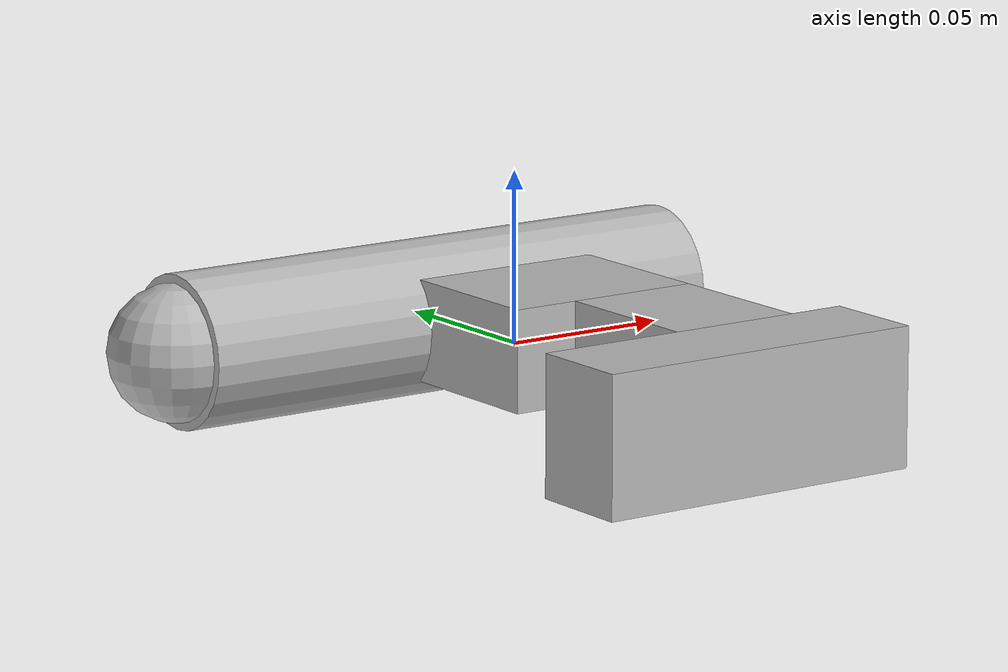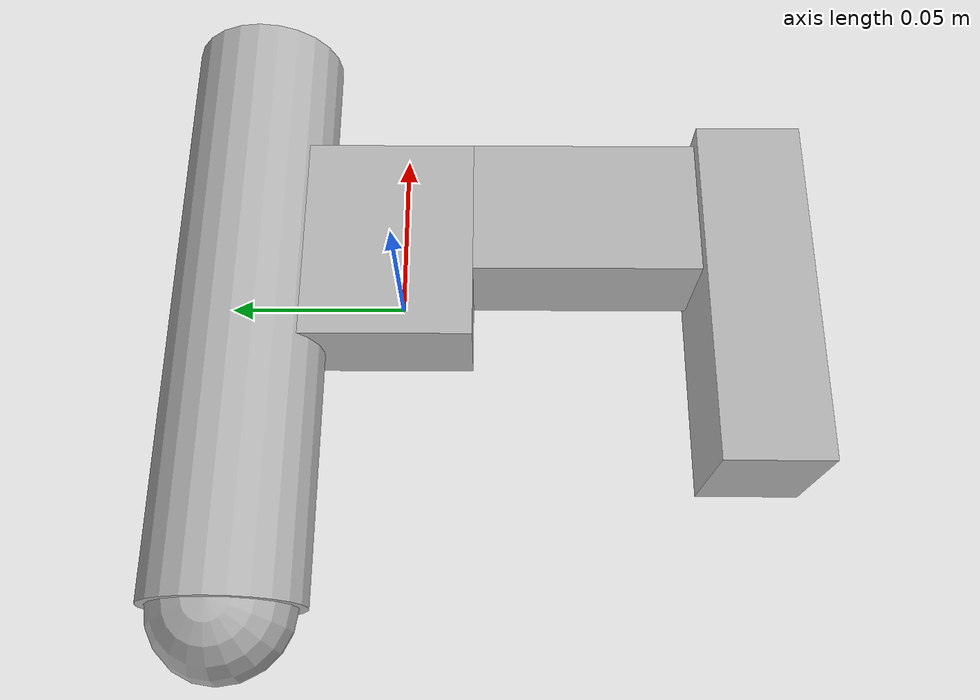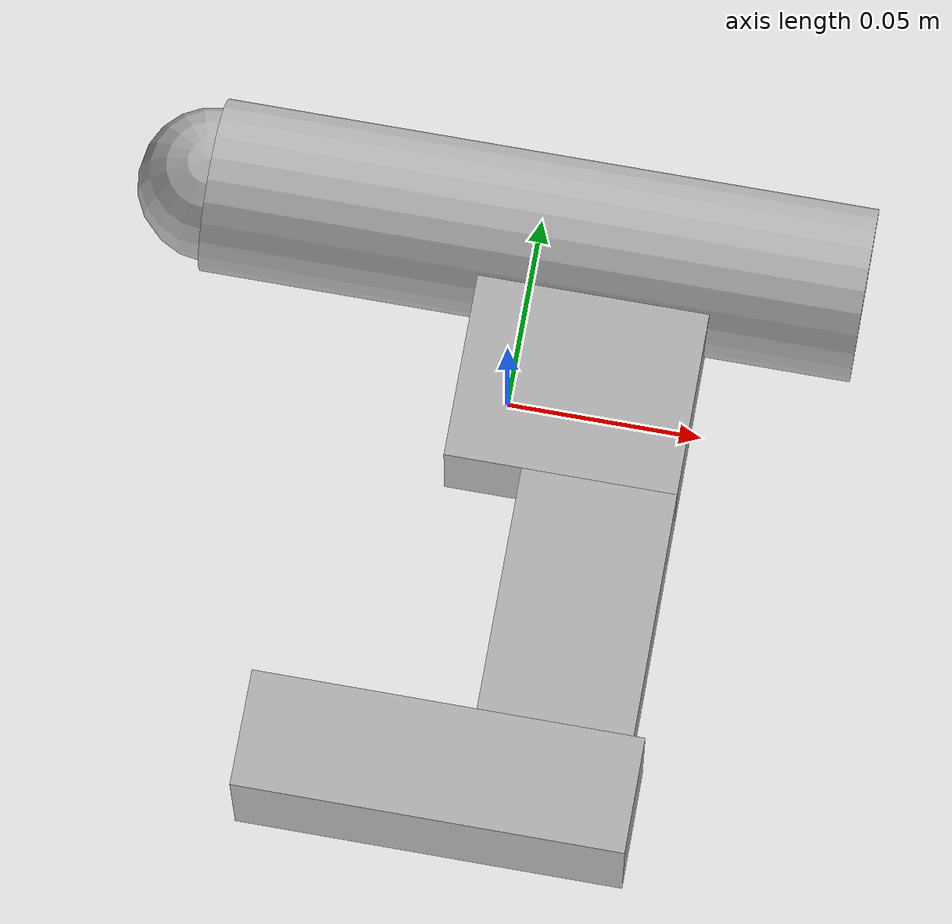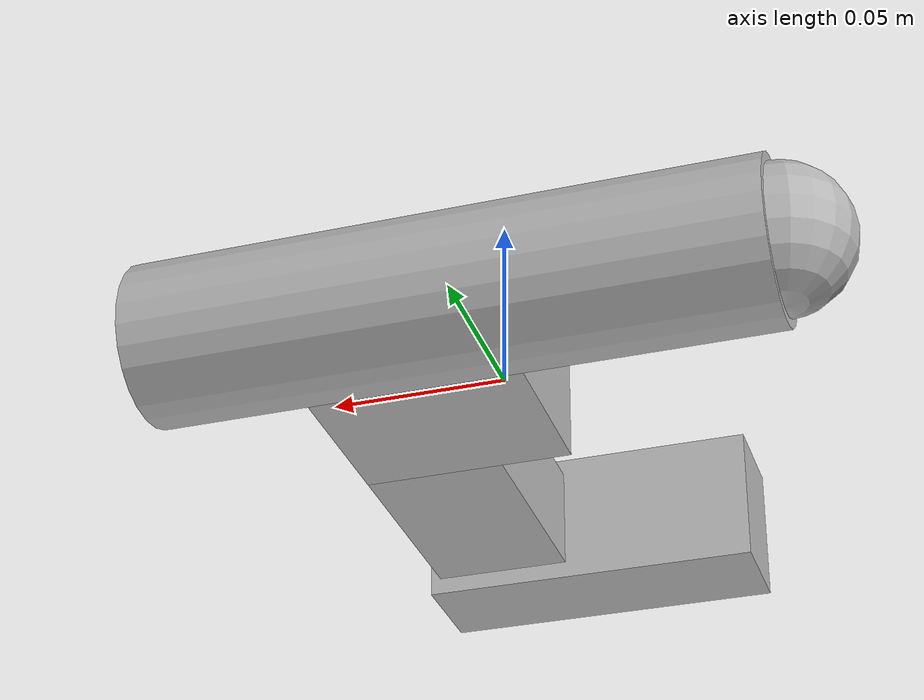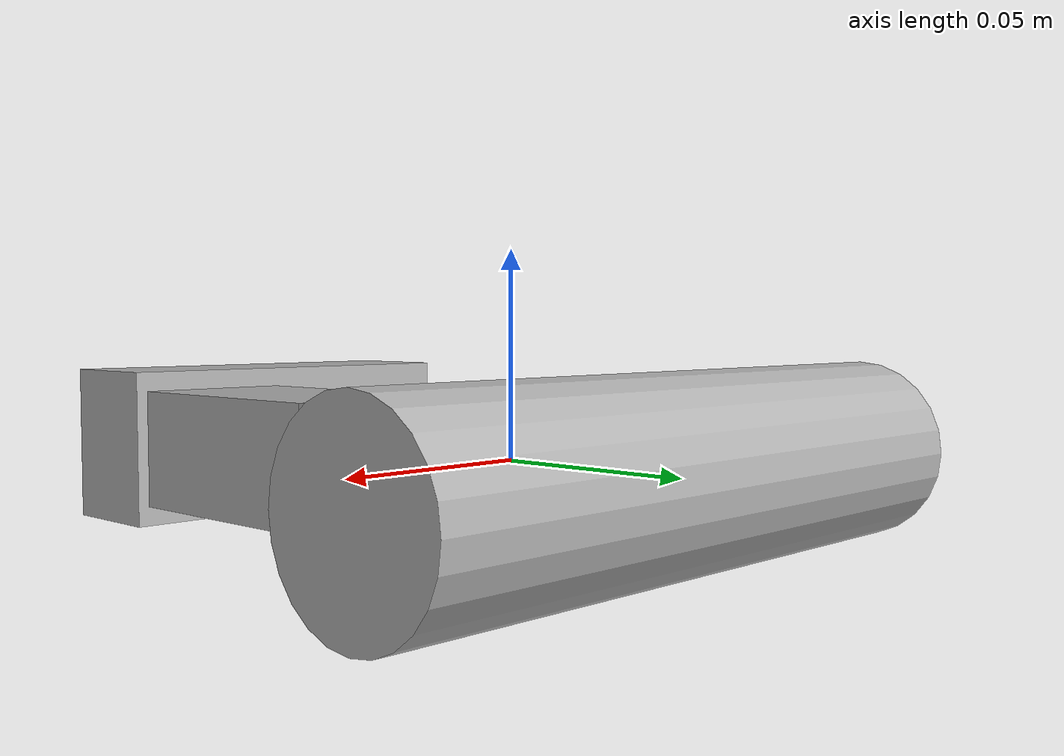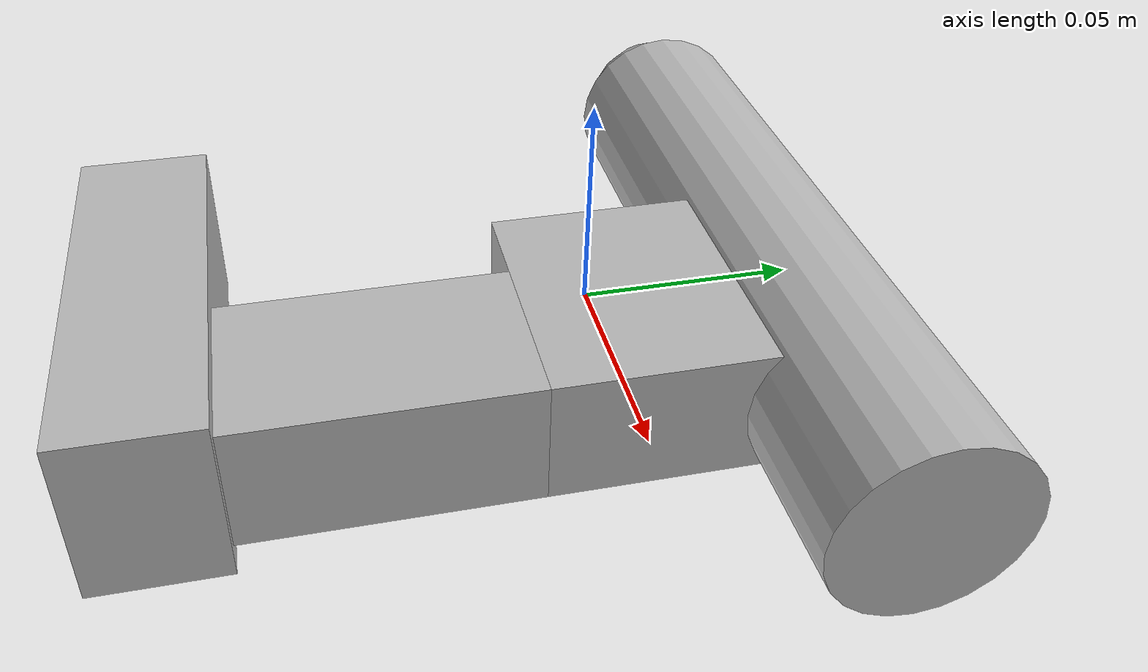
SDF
<?xml version="1.0"?>
<sdf version="1.7">
  <model name="test_drill">
    <link name="base_test">

    </link>

    <link name = "trigger">
      <pose>.017 0.01 0 0 0 0.0</pose>
      <visual name="trigger">
        <geometry>
          <box>
            <size>0.06 0.06 0.03</size>
          </box>
        </geometry>
      </visual>
    </link>

    <link name ="shaft">
      <pose>0.027 -.0525 0 0 0 0.0</pose>
      <visual name="shaft">
        <geometry>
          <box>
            <size>0.04 0.065 0.03</size>
          </box>
        </geometry>
      </visual>
    </link>

    <link name ="drill_base">
      <pose>0 -.1 0 0 0 0.0</pose>
      <visual name="base">
        <geometry>
          <box>
            <size>0.1 0.03 0.04</size>
          </box>
        </geometry>
      </visual>
    </link>

    <link name = "motor">
      <pose>0 .045 0 0 1.570796 0.0</pose>
      <visual name="motor">

        <geometry>
          <cylinder>
            <radius>0.0225</radius>
            <length>0.17</length>
          </cylinder>
        </geometry>
      </visual>
    </link>

    <link name="end">
      <pose>-.085 .045 0 0 0 0</pose>
      <visual name="end">
        <geometry>
          <sphere>
            <radius>.02</radius>
          </sphere>
        </geometry>
      </visual>
    </link>

    <joint name="j0" type="fixed">
      <parent>base_test</parent>
      <child>trigger</child>
    </joint>
    <joint name="j1" type="fixed">
      <parent>base_test</parent>
      <child>shaft</child>
    </joint>
    <joint name="j2" type="fixed">

      <parent>base_test</parent>
      <child>drill_base</child>
      </joint>
    <joint name="j3" type="fixed">

      <parent>base_test</parent>
      <child>motor</child>
    </joint>
    <joint name="j4" type="fixed">
      <parent>base_test</parent>
      <child>end</child>
    </joint>
  </model>
</sdf>
